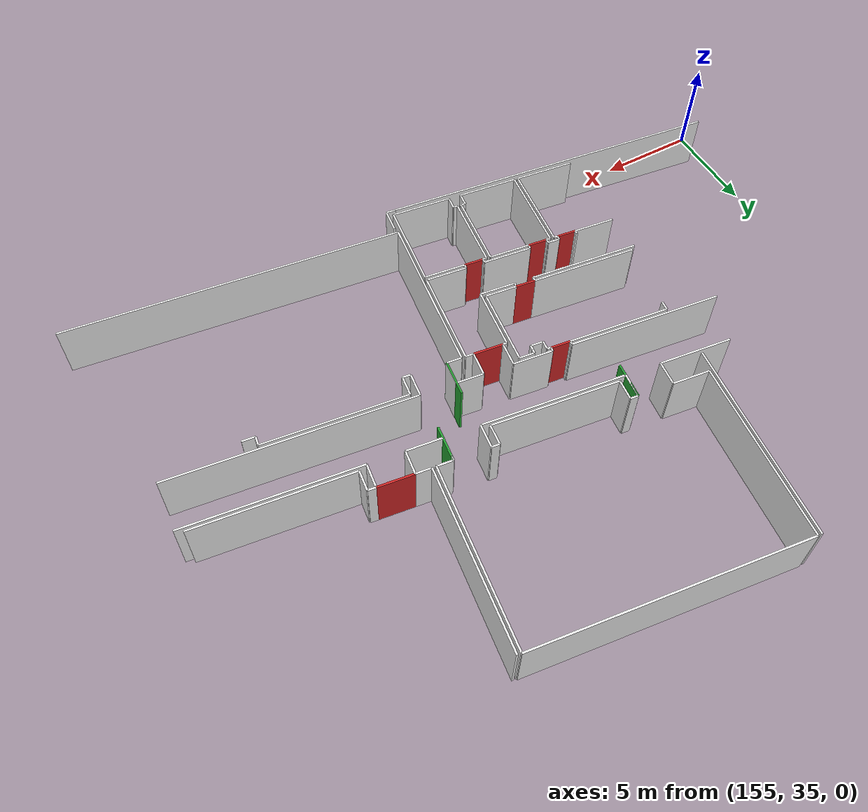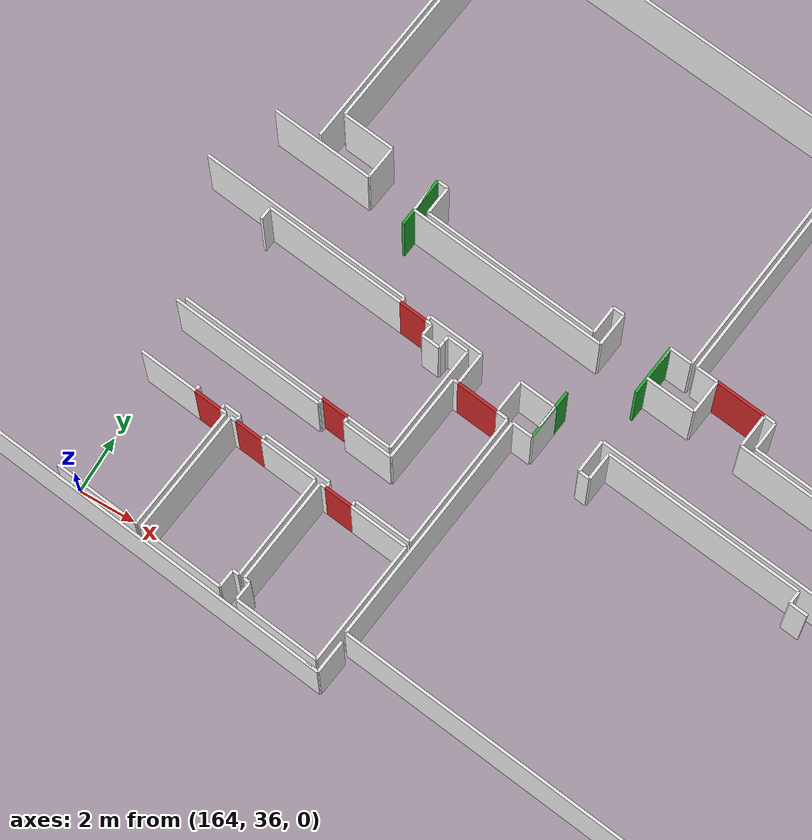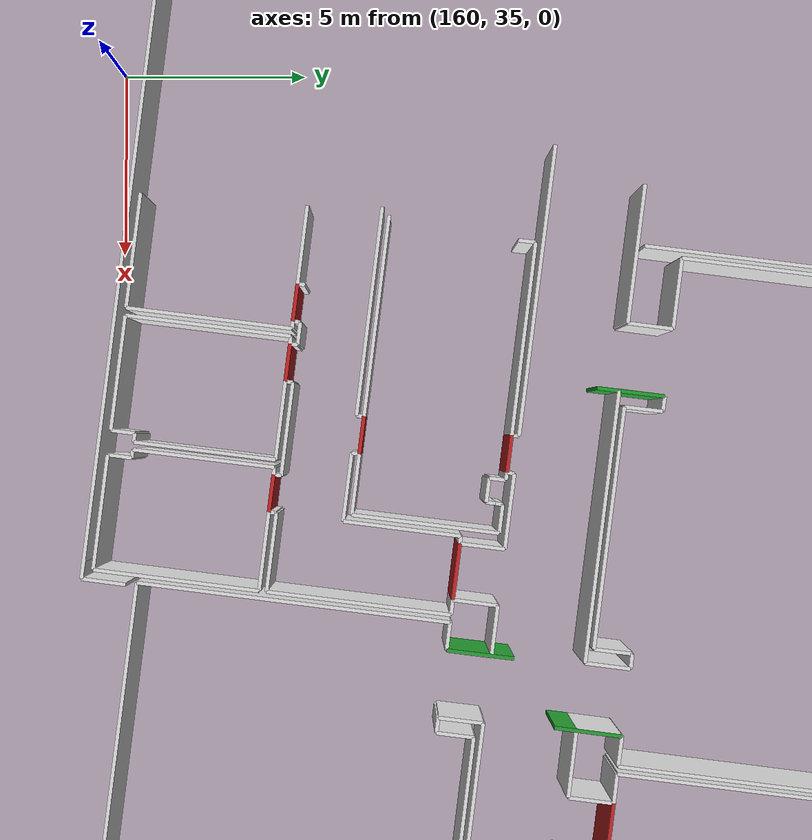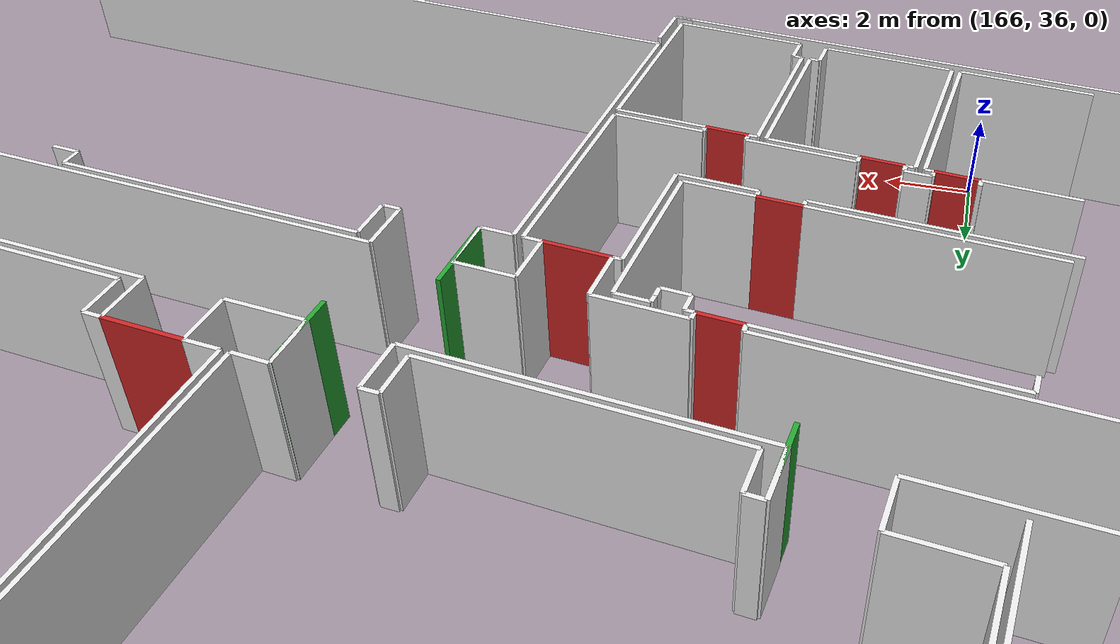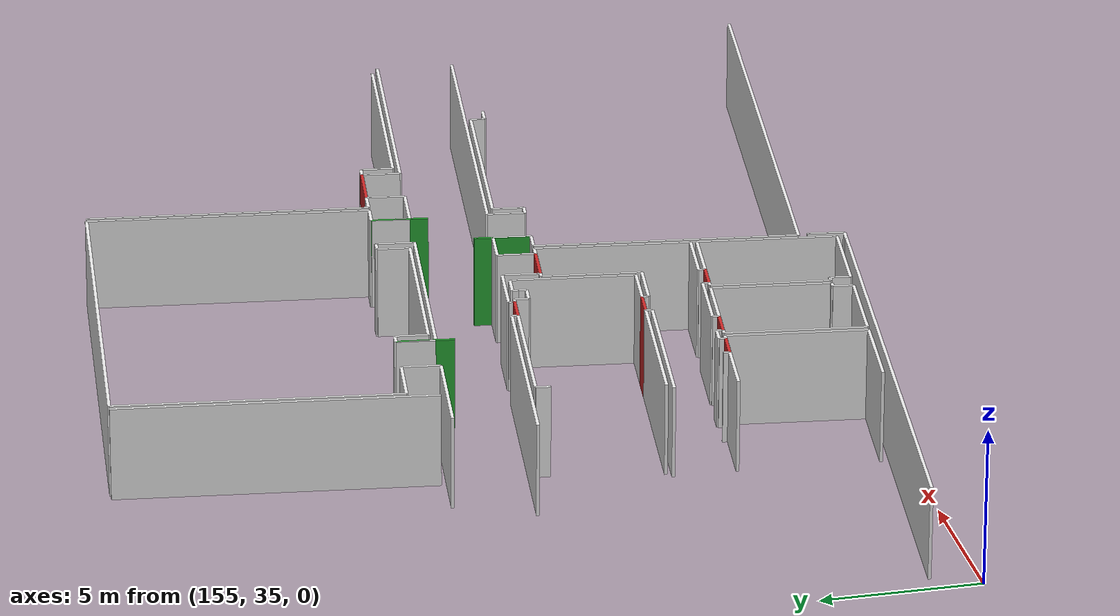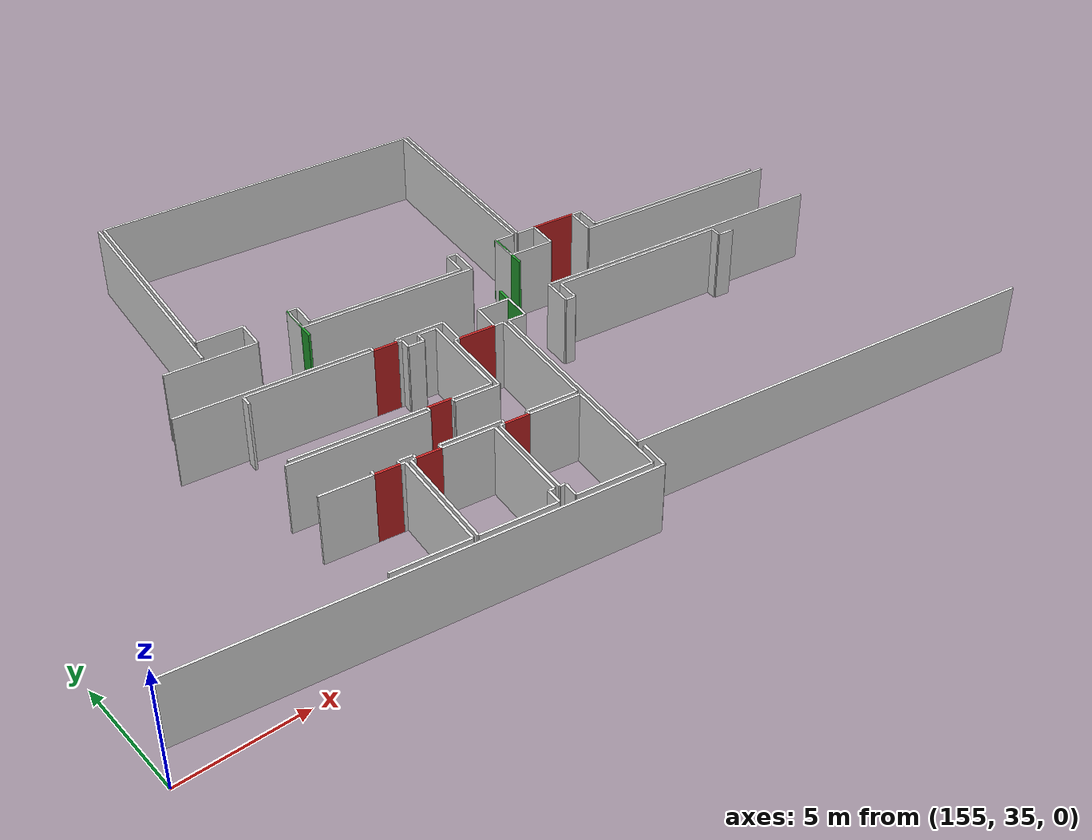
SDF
<sdf version="1.6">
 <world name="default">
  <model name="wall_166.5_39.9">
   <static>true</static>
   <pose>166.50500000000466 39.91000000014901 1.5 0 0 -0.1206236686924795</pose>
   <link name="link">
    <visual name="visual">
     <geometry><box><size>0.9972462083198822 0.1 3</size></box></geometry>
     <material>
      <script><uri>file://media/materials/scripts/gazebo.material</uri><name>Gazebo/Red</name></script>
     </material>
    </visual>
   </link>
  </model>
  <model name="wall_180.6_48.3">
   <static>true</static>
   <pose>180.6350000000093 48.31000000005588 1.5 0 0 3.0193009299888676</pose>
   <link name="link">
    <visual name="visual">
     <geometry><box><size>1.8034688796923075 0.1 3</size></box></geometry>
     <material>
      <script><uri>file://media/materials/scripts/gazebo.material</uri><name>Gazebo/Red</name></script>
     </material>
    </visual>
   </link>
  </model>
  <model name="wall_168.1_39.7">
   <static>true</static>
   <pose>168.09500000000116 39.71999999997206 1.5 0 0 -0.12062366822190172</pose>
   <link name="link">
    <visual name="visual">
     <geometry><box><size>0.9972462083216332 0.1 3</size></box></geometry>
     <material>
      <script><uri>file://media/materials/scripts/gazebo.material</uri><name>Gazebo/Red</name></script>
     </material>
    </visual>
   </link>
  </model>
  <model name="wall_170.5_45.6">
   <static>true</static>
   <pose>170.48499999998603 45.609999999869615 1.5 0 0 -0.1206236686924795</pose>
   <link name="link">
    <visual name="visual">
     <geometry><box><size>0.9972462083198822 0.1 3</size></box></geometry>
     <material>
      <script><uri>file://media/materials/scripts/gazebo.material</uri><name>Gazebo/Red</name></script>
     </material>
    </visual>
   </link>
  </model>
  <model name="wall_175.8_44.9">
   <static>true</static>
   <pose>175.80500000022585 44.86500000022352 1.5 0 0 1.4540117310915928</pose>
   <link name="link">
    <visual name="visual">
     <geometry><box><size>1.802276338498982 0.1 3</size></box></geometry>
     <material>
      <script><uri>file://media/materials/scripts/gazebo.material</uri><name>Gazebo/Green</name></script>
     </material>
    </visual>
   </link>
  </model>
  <model name="wall_177.8_47.7">
   <static>true</static>
   <pose>177.8499999999185 47.734999999869615 1.5 0 0 -1.6930880506520969</pose>
   <link name="link">
    <visual name="visual">
     <geometry><box><size>1.803468879749112 0.1 3</size></box></geometry>
     <material>
      <script><uri>file://media/materials/scripts/gazebo.material</uri><name>Gazebo/Green</name></script>
     </material>
    </visual>
   </link>
  </model>
  <model name="wall_168.8_48.8">
   <static>true</static>
   <pose>168.83500000002095 48.825000000186265 1.5 0 0 -1.6875809222415865</pose>
   <link name="link">
    <visual name="visual">
     <geometry><box><size>1.8022763384447233 0.1 3</size></box></geometry>
     <material>
      <script><uri>file://media/materials/scripts/gazebo.material</uri><name>Gazebo/Green</name></script>
     </material>
    </visual>
   </link>
  </model>
  <model name="wall_173.6_44.2">
   <static>true</static>
   <pose>173.6149999999907 44.21999999997206 1.5 0 0 -0.12022278677294355</pose>
   <link name="link">
    <visual name="visual">
     <geometry><box><size>1.5008331019912227 0.1 3</size></box></geometry>
     <material>
      <script><uri>file://media/materials/scripts/gazebo.material</uri><name>Gazebo/Red</name></script>
     </material>
    </visual>
   </link>
  </model>
  <model name="wall_170.0_41.7">
   <static>true</static>
   <pose>170.0100000000093 41.68999999994412 1.5 0 0 -0.11942892612851068</pose>
   <link name="link">
    <visual name="visual">
     <geometry><box><size>1.0071742649744493 0.1 3</size></box></geometry>
     <material>
      <script><uri>file://media/materials/scripts/gazebo.material</uri><name>Gazebo/Red</name></script>
     </material>
    </visual>
   </link>
  </model>
  <model name="wall_171.6_39.3">
   <static>true</static>
   <pose>171.56500000000233 39.300000000046566 1.5 0 0 -0.12062366822892527</pose>
   <link name="link">
    <visual name="visual">
     <geometry><box><size>0.9972462082638486 0.1 3</size></box></geometry>
     <material>
      <script><uri>file://media/materials/scripts/gazebo.material</uri><name>Gazebo/Red</name></script>
     </material>
    </visual>
   </link>
  </model>
  <model name="wall_166.9_37.6">
   <static>true</static>
   <pose>166.92499999998836 37.63000000012107 1.5 0 0 -1.690673321615393</pose>
   <link name="link">
    <visual name="visual">
     <geometry><box><size>4.4318055010582365 0.1 3</size></box></geometry>
     <material>
      <script><uri>file://media/materials/scripts/gazebo.material</uri><name>Gazebo/White</name></script>
     </material>
    </visual>
   </link>
  </model>
  <model name="wall_165.1_35.6">
   <static>true</static>
   <pose>165.1349999999802 35.61499999999069 1.5 0 0 3.0208710707011033</pose>
   <link name="link">
    <visual name="visual">
     <geometry><box><size>3.0723606558584717 0.1 3</size></box></geometry>
     <material>
      <script><uri>file://media/materials/scripts/gazebo.material</uri><name>Gazebo/White</name></script>
     </material>
    </visual>
   </link>
  </model>
  <model name="wall_165.0_40.1">
   <static>true</static>
   <pose>164.9649999999965 40.09500000020489 1.5 0 0 -0.11905156754423915</pose>
   <link name="link">
    <visual name="visual">
     <geometry><box><size>2.1048990474859015 0.1 3</size></box></geometry>
     <material>
      <script><uri>file://media/materials/scripts/gazebo.material</uri><name>Gazebo/White</name></script>
     </material>
    </visual>
   </link>
  </model>
  <model name="wall_167.1_39.8">
   <static>true</static>
   <pose>167.09500000000116 39.84000000008382 1.5 0 0 -0.10487693882591773</pose>
   <link name="link">
    <visual name="visual">
     <geometry><box><size>0.19104973174969345 0.1 3</size></box></geometry>
     <material>
      <script><uri>file://media/materials/scripts/gazebo.material</uri><name>Gazebo/White</name></script>
     </material>
    </visual>
   </link>
  </model>
  <model name="wall_185.7_46.7">
   <static>true</static>
   <pose>185.67999999999302 46.66500000003725 1.5 0 0 3.0220108925195217</pose>
   <link name="link">
    <visual name="visual">
     <geometry><box><size>7.79567187606697 0.1 3</size></box></geometry>
     <material>
      <script><uri>file://media/materials/scripts/gazebo.material</uri><name>Gazebo/White</name></script>
     </material>
    </visual>
   </link>
  </model>
  <model name="wall_181.9_47.6">
   <static>true</static>
   <pose>181.86999999999534 47.639999999897555 1.5 0 0 1.4536875822346544</pose>
   <link name="link">
    <visual name="visual">
     <geometry><box><size>1.0270345661353761 0.1 3</size></box></geometry>
     <material>
      <script><uri>file://media/materials/scripts/gazebo.material</uri><name>Gazebo/White</name></script>
     </material>
    </visual>
   </link>
  </model>
  <model name="wall_181.7_48.2">
   <static>true</static>
   <pose>181.73000000001048 48.175000000046566 1.5 0 0 3.01723765834454</pose>
   <link name="link">
    <visual name="visual">
     <geometry><box><size>0.4031128874149275 0.1 3</size></box></geometry>
     <material>
      <script><uri>file://media/materials/scripts/gazebo.material</uri><name>Gazebo/White</name></script>
     </material>
    </visual>
   </link>
  </model>
  <model name="wall_179.4_48.5">
   <static>true</static>
   <pose>179.35000000000582 48.46499999985099 1.5 0 0 3.026716048357006</pose>
   <link name="link">
    <visual name="visual">
     <geometry><box><size>0.7851751396509952 0.1 3</size></box></geometry>
     <material>
      <script><uri>file://media/materials/scripts/gazebo.material</uri><name>Gazebo/White</name></script>
     </material>
    </visual>
   </link>
  </model>
  <model name="wall_179.5_52.9">
   <static>true</static>
   <pose>179.49500000002445 52.949999999953434 1.5 0 0 1.4508789678012857</pose>
   <link name="link">
    <visual name="visual">
     <geometry><box><size>8.944232779076149 0.1 3</size></box></geometry>
     <material>
      <script><uri>file://media/materials/scripts/gazebo.material</uri><name>Gazebo/White</name></script>
     </material>
    </visual>
   </link>
  </model>
  <model name="wall_170.4_37.5">
   <static>true</static>
   <pose>170.44499999997788 37.53000000002794 1.5 0 0 -1.6899106225096845</pose>
   <link name="link">
    <visual name="visual">
     <geometry><box><size>3.7868324496644155 0.1 3</size></box></geometry>
     <material>
      <script><uri>file://media/materials/scripts/gazebo.material</uri><name>Gazebo/White</name></script>
     </material>
    </visual>
   </link>
  </model>
  <model name="wall_170.1_35.7">
   <static>true</static>
   <pose>170.10499999998137 35.66500000003725 1.5 0 0 3.0118901153086775</pose>
   <link name="link">
    <visual name="visual">
     <geometry><box><size>0.23194827011012187 0.1 3</size></box></geometry>
     <material>
      <script><uri>file://media/materials/scripts/gazebo.material</uri><name>Gazebo/White</name></script>
     </material>
    </visual>
   </link>
  </model>
  <model name="wall_169.9_35.4">
   <static>true</static>
   <pose>169.94999999998254 35.360000000102445 1.5 0 0 -1.695151321341658</pose>
   <link name="link">
    <visual name="visual">
     <geometry><box><size>0.6449806199952839 0.1 3</size></box></geometry>
     <material>
      <script><uri>file://media/materials/scripts/gazebo.material</uri><name>Gazebo/White</name></script>
     </material>
    </visual>
   </link>
  </model>
  <model name="wall_168.4_35.2">
   <static>true</static>
   <pose>168.3849999999802 35.22500000009313 1.5 0 0 3.020871070550642</pose>
   <link name="link">
    <visual name="visual">
     <geometry><box><size>3.0723606559145504 0.1 3</size></box></geometry>
     <material>
      <script><uri>file://media/materials/scripts/gazebo.material</uri><name>Gazebo/White</name></script>
     </material>
    </visual>
   </link>
  </model>
  <model name="wall_167.1_37.6">
   <static>true</static>
   <pose>167.125 37.60499999998137 1.5 0 0 1.4506488810357367</pose>
   <link name="link">
    <visual name="visual">
     <geometry><box><size>4.421877428998444 0.1 3</size></box></geometry>
     <material>
      <script><uri>file://media/materials/scripts/gazebo.material</uri><name>Gazebo/White</name></script>
     </material>
    </visual>
   </link>
  </model>
  <model name="wall_167.5_39.8">
   <static>true</static>
   <pose>167.49499999999534 39.78999999980442 1.5 0 0 -0.09495170644739931</pose>
   <link name="link">
    <visual name="visual">
     <geometry><box><size>0.21095023106197072 0.1 3</size></box></geometry>
     <material>
      <script><uri>file://media/materials/scripts/gazebo.material</uri><name>Gazebo/White</name></script>
     </material>
    </visual>
   </link>
  </model>
  <model name="wall_169.6_39.5">
   <static>true</static>
   <pose>169.63000000000466 39.53500000014901 1.5 0 0 -0.11961849947817037</pose>
   <link name="link">
    <visual name="visual">
     <geometry><box><size>2.094970166810415 0.1 3</size></box></geometry>
     <material>
      <script><uri>file://media/materials/scripts/gazebo.material</uri><name>Gazebo/White</name></script>
     </material>
    </visual>
   </link>
  </model>
  <model name="wall_183.7_44.2">
   <static>true</static>
   <pose>183.69000000000233 44.22000000020489 1.5 0 0 3.021708265311705</pose>
   <link name="link">
    <visual name="visual">
     <geometry><box><size>12.207620570765556 0.1 3</size></box></geometry>
     <material>
      <script><uri>file://media/materials/scripts/gazebo.material</uri><name>Gazebo/White</name></script>
     </material>
    </visual>
   </link>
  </model>
  <model name="wall_177.6_44.4">
   <static>true</static>
   <pose>177.55999999999767 44.35499999998137 1.5 0 0 -1.6879050713333807</pose>
   <link name="link">
    <visual name="visual">
     <geometry><box><size>1.1982069942122657 0.1 3</size></box></geometry>
     <material>
      <script><uri>file://media/materials/scripts/gazebo.material</uri><name>Gazebo/White</name></script>
     </material>
    </visual>
   </link>
  </model>
  <model name="wall_175.8_44.6">
   <static>true</static>
   <pose>175.77499999999418 44.56500000017695 1.5 0 0 1.4454072064764434</pose>
   <link name="link">
    <visual name="visual">
     <geometry><box><size>1.199416524755487 0.1 3</size></box></geometry>
     <material>
      <script><uri>file://media/materials/scripts/gazebo.material</uri><name>Gazebo/White</name></script>
     </material>
    </visual>
   </link>
  </model>
  <model name="wall_175.2_45.2">
   <static>true</static>
   <pose>175.17999999999302 45.23999999999069 1.5 0 0 3.0227523092521484</pose>
   <link name="link">
    <visual name="visual">
     <geometry><box><size>1.3495184325570784 0.1 3</size></box></geometry>
     <material>
      <script><uri>file://media/materials/scripts/gazebo.material</uri><name>Gazebo/White</name></script>
     </material>
    </visual>
   </link>
  </model>
  <model name="wall_174.4_44.7">
   <static>true</static>
   <pose>174.43499999999767 44.7249999998603 1.5 0 0 -1.696185447161499</pose>
   <link name="link">
    <visual name="visual">
     <geometry><box><size>1.1994165247627664 0.1 3</size></box></geometry>
     <material>
      <script><uri>file://media/materials/scripts/gazebo.material</uri><name>Gazebo/White</name></script>
     </material>
    </visual>
   </link>
  </model>
  <model name="wall_172.9_44.9">
   <static>true</static>
   <pose>172.94000000000233 44.90500000002794 1.5 0 0 1.4536875822110042</pose>
   <link name="link">
    <visual name="visual">
     <geometry><box><size>1.198206993749794 0.1 3</size></box></geometry>
     <material>
      <script><uri>file://media/materials/scripts/gazebo.material</uri><name>Gazebo/White</name></script>
     </material>
    </visual>
   </link>
  </model>
  <model name="wall_172.0_45.6">
   <static>true</static>
   <pose>172.0100000000093 45.62000000011176 1.5 0 0 3.0221637274612827</pose>
   <link name="link">
    <visual name="visual">
     <geometry><box><size>2.0143485299488986 0.1 3</size></box></geometry>
     <material>
      <script><uri>file://media/materials/scripts/gazebo.material</uri><name>Gazebo/White</name></script>
     </material>
    </visual>
   </link>
  </model>
  <model name="wall_171.0_45.6">
   <static>true</static>
   <pose>170.99499999999534 45.64500000001863 1.5 0 0 -1.7273982035881303</pose>
   <link name="link">
    <visual name="visual">
     <geometry><box><size>0.1923538410258384 0.1 3</size></box></geometry>
     <material>
      <script><uri>file://media/materials/scripts/gazebo.material</uri><name>Gazebo/White</name></script>
     </material>
    </visual>
   </link>
  </model>
  <model name="wall_170.0_45.8">
   <static>true</static>
   <pose>170.0 45.764999999897555 1.5 0 0 1.4659193879370842</pose>
   <link name="link">
    <visual name="visual">
     <geometry><box><size>0.19104973169180559 0.1 3</size></box></geometry>
     <material>
      <script><uri>file://media/materials/scripts/gazebo.material</uri><name>Gazebo/White</name></script>
     </material>
    </visual>
   </link>
  </model>
  <model name="wall_166.1_46.3">
   <static>true</static>
   <pose>166.14500000001863 46.324999999953434 1.5 0 0 3.0218576675715907</pose>
   <link name="link">
    <visual name="visual">
     <geometry><box><size>7.7857433813364185 0.1 3</size></box></geometry>
     <material>
      <script><uri>file://media/materials/scripts/gazebo.material</uri><name>Gazebo/White</name></script>
     </material>
    </visual>
   </link>
  </model>
  <model name="wall_165.2_48.9">
   <static>true</static>
   <pose>165.1600000000035 48.949999999953434 1.5 0 0 -0.11900029336803308</pose>
   <link name="link">
    <visual name="visual">
     <geometry><box><size>3.7062110031539515 0.1 3</size></box></geometry>
     <material>
      <script><uri>file://media/materials/scripts/gazebo.material</uri><name>Gazebo/White</name></script>
     </material>
    </visual>
   </link>
  </model>
  <model name="wall_167.1_49.3">
   <static>true</static>
   <pose>167.07500000001164 49.330000000074506 1.5 0 0 1.446441332248135</pose>
   <link name="link">
    <visual name="visual">
     <geometry><box><size>1.2093386624324964 0.1 3</size></box></geometry>
     <material>
      <script><uri>file://media/materials/scripts/gazebo.material</uri><name>Gazebo/White</name></script>
     </material>
    </visual>
   </link>
  </model>
  <model name="wall_168.9_49.1">
   <static>true</static>
   <pose>168.8649999999907 49.11499999999069 1.5 0 0 -1.6941340276703445</pose>
   <link name="link">
    <visual name="visual">
     <geometry><box><size>1.2192620723387293 0.1 3</size></box></geometry>
     <material>
      <script><uri>file://media/materials/scripts/gazebo.material</uri><name>Gazebo/White</name></script>
     </material>
    </visual>
   </link>
  </model>
  <model name="wall_172.4_48.1">
   <static>true</static>
   <pose>172.40499999999884 48.074999999953434 1.5 0 0 -0.11975615108864926</pose>
   <link name="link">
    <visual name="visual">
     <geometry><box><size>7.2821562740685915 0.1 3</size></box></geometry>
     <material>
      <script><uri>file://media/materials/scripts/gazebo.material</uri><name>Gazebo/White</name></script>
     </material>
    </visual>
   </link>
  </model>
  <model name="wall_176.1_48.2">
   <static>true</static>
   <pose>176.09500000000116 48.24500000011176 1.5 0 0 1.4474586259198403</pose>
   <link name="link">
    <visual name="visual">
     <geometry><box><size>1.2192620718694447 0.1 3</size></box></geometry>
     <material>
      <script><uri>file://media/materials/scripts/gazebo.material</uri><name>Gazebo/White</name></script>
     </material>
    </visual>
   </link>
  </model>
  <model name="wall_177.9_48.0">
   <static>true</static>
   <pose>177.8850000000093 48.02499999990687 1.5 0 0 -1.6941340277173305</pose>
   <link name="link">
    <visual name="visual">
     <geometry><box><size>1.2192620718766056 0.1 3</size></box></geometry>
     <material>
      <script><uri>file://media/materials/scripts/gazebo.material</uri><name>Gazebo/White</name></script>
     </material>
    </visual>
   </link>
  </model>
  <model name="wall_178.7_47.3">
   <static>true</static>
   <pose>178.70000000001164 47.31499999994412 1.5 0 0 -0.11743468977405322</pose>
   <link name="link">
    <visual name="visual">
     <geometry><box><size>1.7923448329168745 0.1 3</size></box></geometry>
     <material>
      <script><uri>file://media/materials/scripts/gazebo.material</uri><name>Gazebo/White</name></script>
     </material>
    </visual>
   </link>
  </model>
  <model name="wall_179.7_47.8">
   <static>true</static>
   <pose>179.66500000000815 47.81499999994412 1.5 0 0 1.4474586259198403</pose>
   <link name="link">
    <visual name="visual">
     <geometry><box><size>1.2192620718694447 0.1 3</size></box></geometry>
     <material>
      <script><uri>file://media/materials/scripts/gazebo.material</uri><name>Gazebo/White</name></script>
     </material>
    </visual>
   </link>
  </model>
  <model name="wall_181.5_47.6">
   <static>true</static>
   <pose>181.4550000000163 47.59500000020489 1.5 0 0 -1.6941340277173305</pose>
   <link name="link">
    <visual name="visual">
     <geometry><box><size>1.2192620718766056 0.1 3</size></box></geometry>
     <material>
      <script><uri>file://media/materials/scripts/gazebo.material</uri><name>Gazebo/White</name></script>
     </material>
    </visual>
   </link>
  </model>
  <model name="wall_185.7_46.5">
   <static>true</static>
   <pose>185.65499999999884 46.47500000009313 1.5 0 0 -0.11989009554178759</pose>
   <link name="link">
    <visual name="visual">
     <geometry><box><size>8.611817462088831 0.1 3</size></box></geometry>
     <material>
      <script><uri>file://media/materials/scripts/gazebo.material</uri><name>Gazebo/White</name></script>
     </material>
    </visual>
   </link>
  </model>
  <model name="wall_172.2_45.4">
   <static>true</static>
   <pose>172.21000000002095 45.39500000001863 1.5 0 0 -0.11787210300242888</pose>
   <link name="link">
    <visual name="visual">
     <geometry><box><size>0.7653103945376242 0.1 3</size></box></geometry>
     <material>
      <script><uri>file://media/materials/scripts/gazebo.material</uri><name>Gazebo/White</name></script>
     </material>
    </visual>
   </link>
  </model>
  <model name="wall_172.4_43.4">
   <static>true</static>
   <pose>172.35500000001048 43.39500000001863 1.5 0 0 -1.69042694704516</pose>
   <link name="link">
    <visual name="visual">
     <geometry><box><size>3.938146772429098 0.1 3</size></box></geometry>
     <material>
      <script><uri>file://media/materials/scripts/gazebo.material</uri><name>Gazebo/White</name></script>
     </material>
    </visual>
   </link>
  </model>
  <model name="wall_171.3_41.5">
   <static>true</static>
   <pose>171.31500000000233 41.53499999991618 1.5 0 0 3.024123548711388</pose>
   <link name="link">
    <visual name="visual">
     <geometry><box><size>1.6211724152395952 0.1 3</size></box></geometry>
     <material>
      <script><uri>file://media/materials/scripts/gazebo.material</uri><name>Gazebo/White</name></script>
     </material>
    </visual>
   </link>
  </model>
  <model name="wall_166.8_42.1">
   <static>true</static>
   <pose>166.8399999999965 42.07000000006519 1.5 0 0 3.0223114162191558</pose>
   <link name="link">
    <visual name="visual">
     <geometry><box><size>5.378215317411569 0.1 3</size></box></geometry>
     <material>
      <script><uri>file://media/materials/scripts/gazebo.material</uri><name>Gazebo/White</name></script>
     </material>
    </visual>
   </link>
  </model>
  <model name="wall_164.8_46.0">
   <static>true</static>
   <pose>164.84500000000116 46.049999999813735 1.5 0 0 1.4625257359507529</pose>
   <link name="link">
    <visual name="visual">
     <geometry><box><size>0.46270941201207827 0.1 3</size></box></geometry>
     <material>
      <script><uri>file://media/materials/scripts/gazebo.material</uri><name>Gazebo/White</name></script>
     </material>
    </visual>
   </link>
  </model>
  <model name="wall_167.4_46.0">
   <static>true</static>
   <pose>167.42999999999302 45.9749999998603 1.5 0 0 -0.11858166439217471</pose>
   <link name="link">
    <visual name="visual">
     <geometry><box><size>5.156209848308469 0.1 3</size></box></geometry>
     <material>
      <script><uri>file://media/materials/scripts/gazebo.material</uri><name>Gazebo/White</name></script>
     </material>
    </visual>
   </link>
  </model>
  <model name="wall_171.1_45.5">
   <static>true</static>
   <pose>171.0799999999872 45.53499999991618 1.5 0 0 -0.14888994659904642</pose>
   <link name="link">
    <visual name="visual">
     <geometry><box><size>0.20223748414268597 0.1 3</size></box></geometry>
     <material>
      <script><uri>file://media/materials/scripts/gazebo.material</uri><name>Gazebo/White</name></script>
     </material>
    </visual>
   </link>
  </model>
  <model name="wall_171.2_45.3">
   <static>true</static>
   <pose>171.15499999999884 45.300000000046566 1.5 0 0 -1.6839473083735081</pose>
   <link name="link">
    <visual name="visual">
     <geometry><box><size>0.4428317964528541 0.1 3</size></box></geometry>
     <material>
      <script><uri>file://media/materials/scripts/gazebo.material</uri><name>Gazebo/White</name></script>
     </material>
    </visual>
   </link>
  </model>
  <model name="wall_171.5_45.0">
   <static>true</static>
   <pose>171.45000000001164 45.04000000003725 1.5 0 0 -0.12435499465869924</pose>
   <link name="link">
    <visual name="visual">
     <geometry><box><size>0.6449806198869872 0.1 3</size></box></geometry>
     <material>
      <script><uri>file://media/materials/scripts/gazebo.material</uri><name>Gazebo/White</name></script>
     </material>
    </visual>
   </link>
  </model>
  <model name="wall_171.8_45.1">
   <static>true</static>
   <pose>171.7850000000035 45.125 1.5 0 0 1.4513674008959114</pose>
   <link name="link">
    <visual name="visual">
     <geometry><box><size>0.25179356623667715 0.1 3</size></box></geometry>
     <material>
      <script><uri>file://media/materials/scripts/gazebo.material</uri><name>Gazebo/White</name></script>
     </material>
    </visual>
   </link>
  </model>
  <model name="wall_171.8_45.3">
   <static>true</static>
   <pose>171.81500000000233 45.34499999997206 1.5 0 0 1.4141944496240997</pose>
   <link name="link">
    <visual name="visual">
     <geometry><box><size>0.19235384056587543 0.1 3</size></box></geometry>
     <material>
      <script><uri>file://media/materials/scripts/gazebo.material</uri><name>Gazebo/White</name></script>
     </material>
    </visual>
   </link>
  </model>
  <model name="wall_165.6_54.1">
   <static>true</static>
   <pose>165.55000000001746 54.11499999999069 1.5 0 0 -1.691540779261425</pose>
   <link name="link">
    <visual name="visual">
     <geometry><box><size>9.96253481813775 0.1 3</size></box></geometry>
     <material>
      <script><uri>file://media/materials/scripts/gazebo.material</uri><name>Gazebo/White</name></script>
     </material>
    </visual>
   </link>
  </model>
  <model name="wall_178.4_48.6">
   <static>true</static>
   <pose>178.36000000001513 48.579999999841675 1.5 0 0 3.0172376589266166</pose>
   <link name="link">
    <visual name="visual">
     <geometry><box><size>0.806225774829855 0.1 3</size></box></geometry>
     <material>
      <script><uri>file://media/materials/scripts/gazebo.material</uri><name>Gazebo/White</name></script>
     </material>
    </visual>
   </link>
  </model>
  <model name="wall_176.0_48.9">
   <static>true</static>
   <pose>175.97000000000116 48.87000000011176 1.5 0 0 3.0419240009977764</pose>
   <link name="link">
    <visual name="visual">
     <geometry><box><size>0.4019950248137912 0.1 3</size></box></geometry>
     <material>
      <script><uri>file://media/materials/scripts/gazebo.material</uri><name>Gazebo/White</name></script>
     </material>
    </visual>
   </link>
  </model>
  <model name="wall_175.7_48.4">
   <static>true</static>
   <pose>175.71000000002095 48.38000000012107 1.5 0 0 -1.687905071355139</pose>
   <link name="link">
    <visual name="visual">
     <geometry><box><size>1.0270345661353761 0.1 3</size></box></geometry>
     <material>
      <script><uri>file://media/materials/scripts/gazebo.material</uri><name>Gazebo/White</name></script>
     </material>
    </visual>
   </link>
  </model>
  <model name="wall_172.4_48.3">
   <static>true</static>
   <pose>172.43499999999767 48.26000000000931 1.5 0 0 3.0208760957199403</pose>
   <link name="link">
    <visual name="visual">
     <geometry><box><size>6.4771367131116735 0.1 3</size></box></geometry>
     <material>
      <script><uri>file://media/materials/scripts/gazebo.material</uri><name>Gazebo/White</name></script>
     </material>
    </visual>
   </link>
  </model>
  <model name="wall_169.3_49.2">
   <static>true</static>
   <pose>169.27999999999884 49.15999999991618 1.5 0 0 1.453687582178367</pose>
   <link name="link">
    <visual name="visual">
     <geometry><box><size>1.0270345661421774 0.1 3</size></box></geometry>
     <material>
      <script><uri>file://media/materials/scripts/gazebo.material</uri><name>Gazebo/White</name></script>
     </material>
    </visual>
   </link>
  </model>
  <model name="wall_169.1_49.7">
   <static>true</static>
   <pose>169.14000000001397 49.69500000006519 1.5 0 0 3.01723765836245</pose>
   <link name="link">
    <visual name="visual">
     <geometry><box><size>0.4031128874726857 0.1 3</size></box></geometry>
     <material>
      <script><uri>file://media/materials/scripts/gazebo.material</uri><name>Gazebo/White</name></script>
     </material>
    </visual>
   </link>
  </model>
  <model name="wall_166.2_50.0">
   <static>true</static>
   <pose>166.21000000002095 50.045000000158325 1.5 0 0 3.0198571684511863</pose>
   <link name="link">
    <visual name="visual">
     <geometry><box><size>1.894016895386348 0.1 3</size></box></geometry>
     <material>
      <script><uri>file://media/materials/scripts/gazebo.material</uri><name>Gazebo/White</name></script>
     </material>
    </visual>
   </link>
  </model>
  <model name="wall_165.8_54.6">
   <static>true</static>
   <pose>165.80999999999767 54.59499999997206 1.5 0 0 1.4496339921387622</pose>
   <link name="link">
    <visual name="visual">
     <geometry><box><size>8.935507819571937 0.1 3</size></box></geometry>
     <material>
      <script><uri>file://media/materials/scripts/gazebo.material</uri><name>Gazebo/White</name></script>
     </material>
    </visual>
   </link>
  </model>
  <model name="wall_173.1_58.2">
   <static>true</static>
   <pose>173.09500000000116 58.21999999997206 1.5 0 0 -0.11951661708533105</pose>
   <link name="link">
    <visual name="visual">
     <geometry><box><size>13.586923860836658 0.1 3</size></box></geometry>
     <material>
      <script><uri>file://media/materials/scripts/gazebo.material</uri><name>Gazebo/White</name></script>
     </material>
    </visual>
   </link>
  </model>
  <model name="wall_179.3_53.0">
   <static>true</static>
   <pose>179.30000000001746 52.96999999997206 1.5 0 0 -1.6918235466011338</pose>
   <link name="link">
    <visual name="visual">
     <geometry><box><size>8.945434590131466 0.1 3</size></box></geometry>
     <material>
      <script><uri>file://media/materials/scripts/gazebo.material</uri><name>Gazebo/White</name></script>
     </material>
    </visual>
   </link>
  </model>
  <model name="wall_185.4_43.4">
   <static>true</static>
   <pose>185.40499999999884 43.359999999869615 1.5 0 0 3.0191315960530236</pose>
   <link name="link">
    <visual name="visual">
     <geometry><box><size>0.6549045731757559 0.1 3</size></box></geometry>
     <material>
      <script><uri>file://media/materials/scripts/gazebo.material</uri><name>Gazebo/White</name></script>
     </material>
    </visual>
   </link>
  </model>
  <model name="wall_185.1_43.6">
   <static>true</static>
   <pose>185.11000000001513 43.625 1.5 0 0 1.4382447945575316</pose>
   <link name="link">
    <visual name="visual">
     <geometry><box><size>0.45398237869696956 0.1 3</size></box></geometry>
     <material>
      <script><uri>file://media/materials/scripts/gazebo.material</uri><name>Gazebo/White</name></script>
     </material>
    </visual>
   </link>
  </model>
  <model name="wall_181.6_44.3">
   <static>true</static>
   <pose>181.57500000001164 44.2750000001397 1.5 0 0 3.0229380636870755</pose>
   <link name="link">
    <visual name="visual">
     <geometry><box><size>7.180487448650316 0.1 3</size></box></geometry>
     <material>
      <script><uri>file://media/materials/scripts/gazebo.material</uri><name>Gazebo/White</name></script>
     </material>
    </visual>
   </link>
  </model>
  <model name="wall_178.0_44.2">
   <static>true</static>
   <pose>177.95000000001164 44.205000000074506 1.5 0 0 -1.6914199953433933</pose>
   <link name="link">
    <visual name="visual">
     <geometry><box><size>0.9972462085370126 0.1 3</size></box></geometry>
     <material>
      <script><uri>file://media/materials/scripts/gazebo.material</uri><name>Gazebo/White</name></script>
     </material>
    </visual>
   </link>
  </model>
  <model name="wall_177.7_43.7">
   <static>true</static>
   <pose>177.69000000000233 43.734999999869615 1.5 0 0 3.017237659508693</pose>
   <link name="link">
    <visual name="visual">
     <geometry><box><size>0.4031128874149275 0.1 3</size></box></geometry>
     <material>
      <script><uri>file://media/materials/scripts/gazebo.material</uri><name>Gazebo/White</name></script>
     </material>
    </visual>
   </link>
  </model>
  <model name="wall_175.3_44.0">
   <static>true</static>
   <pose>175.3300000000163 44.015000000130385 1.5 0 0 3.0205654339775116</pose>
   <link name="link">
    <visual name="visual">
     <geometry><box><size>0.7454528824542799 0.1 3</size></box></geometry>
     <material>
      <script><uri>file://media/materials/scripts/gazebo.material</uri><name>Gazebo/White</name></script>
     </material>
    </visual>
   </link>
  </model>
  <model name="wall_174.5_39.9">
   <static>true</static>
   <pose>174.4550000000163 39.90500000002794 1.5 0 0 -1.6917434222515764</pose>
   <link name="link">
    <visual name="visual">
     <geometry><box><size>8.371152847783126 0.1 3</size></box></geometry>
     <material>
      <script><uri>file://media/materials/scripts/gazebo.material</uri><name>Gazebo/White</name></script>
     </material>
    </visual>
   </link>
  </model>
  <model name="wall_182.5_34.7">
   <static>true</static>
   <pose>182.5450000000128 34.71500000008382 1.5 0 0 -0.11984180790102025</pose>
   <link name="link">
    <visual name="visual">
     <geometry><box><size>17.31418493603976 0.1 3</size></box></geometry>
     <material>
      <script><uri>file://media/materials/scripts/gazebo.material</uri><name>Gazebo/White</name></script>
     </material>
    </visual>
   </link>
  </model>
  <model name="wall_171.0_39.4">
   <static>true</static>
   <pose>170.97000000000116 39.36999999987893 1.5 0 0 -0.09966865257760905</pose>
   <link name="link">
    <visual name="visual">
     <geometry><box><size>0.20099751243585498 0.1 3</size></box></geometry>
     <material>
      <script><uri>file://media/materials/scripts/gazebo.material</uri><name>Gazebo/White</name></script>
     </material>
    </visual>
   </link>
  </model>
  <model name="wall_173.1_39.1">
   <static>true</static>
   <pose>173.10500000001048 39.11500000022352 1.5 0 0 -0.11905156754423915</pose>
   <link name="link">
    <visual name="visual">
     <geometry><box><size>2.1048990474859015 0.1 3</size></box></geometry>
     <material>
      <script><uri>file://media/materials/scripts/gazebo.material</uri><name>Gazebo/White</name></script>
     </material>
    </visual>
   </link>
  </model>
  <model name="wall_173.9_36.8">
   <static>true</static>
   <pose>173.88000000000466 36.79000000003725 1.5 0 0 -1.6929129367177644</pose>
   <link name="link">
    <visual name="visual">
     <geometry><box><size>4.43301252009494 0.1 3</size></box></geometry>
     <material>
      <script><uri>file://media/materials/scripts/gazebo.material</uri><name>Gazebo/White</name></script>
     </material>
    </visual>
   </link>
  </model>
  <model name="wall_172.1_34.8">
   <static>true</static>
   <pose>172.08499999999185 34.77499999990687 1.5 0 0 3.020871070550642</pose>
   <link name="link">
    <visual name="visual">
     <geometry><box><size>3.0723606559145504 0.1 3</size></box></geometry>
     <material>
      <script><uri>file://media/materials/scripts/gazebo.material</uri><name>Gazebo/White</name></script>
     </material>
    </visual>
   </link>
  </model>
  <model name="wall_170.6_35.3">
   <static>true</static>
   <pose>170.60000000000582 35.28000000002794 1.5 0 0 1.446441332248135</pose>
   <link name="link">
    <visual name="visual">
     <geometry><box><size>0.6449806199952839 0.1 3</size></box></geometry>
     <material>
      <script><uri>file://media/materials/scripts/gazebo.material</uri><name>Gazebo/White</name></script>
     </material>
    </visual>
   </link>
  </model>
  <model name="wall_170.5_35.6">
   <static>true</static>
   <pose>170.52999999999884 35.61499999999069 1.5 0 0 3.006064940537032</pose>
   <link name="link">
    <visual name="visual">
     <geometry><box><size>0.22203603311405212 0.1 3</size></box></geometry>
     <material>
      <script><uri>file://media/materials/scripts/gazebo.material</uri><name>Gazebo/White</name></script>
     </material>
    </visual>
   </link>
  </model>
  <model name="wall_170.6_37.5">
   <static>true</static>
   <pose>170.64499999998952 37.50499999988824 1.5 0 0 1.4513674007734978</pose>
   <link name="link">
    <visual name="visual">
     <geometry><box><size>3.7769034936056385 0.1 3</size></box></geometry>
     <material>
      <script><uri>file://media/materials/scripts/gazebo.material</uri><name>Gazebo/White</name></script>
     </material>
    </visual>
   </link>
  </model>
  <model name="wall_166.7_41.9">
   <static>true</static>
   <pose>166.72000000000116 41.87999999988824 1.5 0 0 -0.11857471213006499</pose>
   <link name="link">
    <visual name="visual">
     <geometry><box><size>5.579175566332764 0.1 3</size></box></geometry>
     <material>
      <script><uri>file://media/materials/scripts/gazebo.material</uri><name>Gazebo/White</name></script>
     </material>
    </visual>
   </link>
  </model>
  <model name="wall_169.5_41.6">
   <static>true</static>
   <pose>169.5 41.64999999990687 1.5 0 0 1.4711276743037347</pose>
   <link name="link">
    <visual name="visual">
     <geometry><box><size>0.20099751260961132 0.1 3</size></box></geometry>
     <material>
      <script><uri>file://media/materials/scripts/gazebo.material</uri><name>Gazebo/White</name></script>
     </material>
    </visual>
   </link>
  </model>
  <model name="wall_170.5_41.5">
   <static>true</static>
   <pose>170.49499999999534 41.53000000002794 1.5 0 0 -1.7196862747459547</pose>
   <link name="link">
    <visual name="visual">
     <geometry><box><size>0.2022374838894058 0.1 3</size></box></geometry>
     <material>
      <script><uri>file://media/materials/scripts/gazebo.material</uri><name>Gazebo/White</name></script>
     </material>
    </visual>
   </link>
  </model>
  <model name="wall_171.4_41.3">
   <static>true</static>
   <pose>171.3849999999802 41.32000000006519 1.5 0 0 -0.1209536472312257</pose>
   <link name="link">
    <visual name="visual">
     <geometry><box><size>1.823321145624578 0.1 3</size></box></geometry>
     <material>
      <script><uri>file://media/materials/scripts/gazebo.material</uri><name>Gazebo/White</name></script>
     </material>
    </visual>
   </link>
  </model>
  <model name="wall_172.5_42.8">
   <static>true</static>
   <pose>172.47999999998137 42.77000000001863 1.5 0 0 1.4495983856926966</pose>
   <link name="link">
    <visual name="visual">
     <geometry><box><size>3.1430558379864832 0.1 3</size></box></geometry>
     <material>
      <script><uri>file://media/materials/scripts/gazebo.material</uri><name>Gazebo/White</name></script>
     </material>
    </visual>
   </link>
  </model>
  <model name="wall_172.8_44.3">
   <static>true</static>
   <pose>172.76999999998952 44.32000000006519 1.5 0 0 -0.09966865257760905</pose>
   <link name="link">
    <visual name="visual">
     <geometry><box><size>0.20099751243585498 0.1 3</size></box></geometry>
     <material>
      <script><uri>file://media/materials/scripts/gazebo.material</uri><name>Gazebo/White</name></script>
     </material>
    </visual>
   </link>
  </model>
  <model name="wall_174.6_44.1">
   <static>true</static>
   <pose>174.55999999999767 44.10499999998137 1.5 0 0 -0.12435499408110015</pose>
   <link name="link">
    <visual name="visual">
     <geometry><box><size>0.4031128874149275 0.1 3</size></box></geometry>
     <material>
      <script><uri>file://media/materials/scripts/gazebo.material</uri><name>Gazebo/White</name></script>
     </material>
    </visual>
   </link>
  </model>
  <model name="wall_174.5_41.6">
   <static>true</static>
   <pose>174.4649999999965 41.63500000000931 1.5 0 0 -1.690870309974588</pose>
   <link name="link">
    <visual name="visual">
     <geometry><box><size>4.925464445238173 0.1 3</size></box></geometry>
     <material>
      <script><uri>file://media/materials/scripts/gazebo.material</uri><name>Gazebo/White</name></script>
     </material>
    </visual>
   </link>
  </model>
  <model name="wall_173.1_39.3">
   <static>true</static>
   <pose>173.125 39.31499999994412 1.5 0 0 3.0225410860422697</pose>
   <link name="link">
    <visual name="visual">
     <geometry><box><size>2.104899047428106 0.1 3</size></box></geometry>
     <material>
      <script><uri>file://media/materials/scripts/gazebo.material</uri><name>Gazebo/White</name></script>
     </material>
    </visual>
   </link>
  </model>
  <model name="wall_172.1_39.3">
   <static>true</static>
   <pose>172.07000000000698 39.34000000008382 1.5 0 0 -1.670464979516584</pose>
   <link name="link">
    <visual name="visual">
     <geometry><box><size>0.20099751214626105 0.1 3</size></box></geometry>
     <material>
      <script><uri>file://media/materials/scripts/gazebo.material</uri><name>Gazebo/White</name></script>
     </material>
    </visual>
   </link>
  </model>
  <model name="wall_171.1_39.5">
   <static>true</static>
   <pose>171.0800000000163 39.45999999996275 1.5 0 0 1.4711276743037347</pose>
   <link name="link">
    <visual name="visual">
     <geometry><box><size>0.20099751260961132 0.1 3</size></box></geometry>
     <material>
      <script><uri>file://media/materials/scripts/gazebo.material</uri><name>Gazebo/White</name></script>
     </material>
    </visual>
   </link>
  </model>
  <model name="wall_169.9_39.7">
   <static>true</static>
   <pose>169.85500000001048 39.70999999996275 1.5 0 0 3.0207271763608894</pose>
   <link name="link">
    <visual name="visual">
     <geometry><box><size>2.4881519246295563 0.1 3</size></box></geometry>
     <material>
      <script><uri>file://media/materials/scripts/gazebo.material</uri><name>Gazebo/White</name></script>
     </material>
    </visual>
   </link>
  </model>
  <model name="wall_168.6_39.8">
   <static>true</static>
   <pose>168.60500000001048 39.76000000000931 1.5 0 0 -1.7196862744613206</pose>
   <link name="link">
    <visual name="visual">
     <geometry><box><size>0.20223748388077126 0.1 3</size></box></geometry>
     <material>
      <script><uri>file://media/materials/scripts/gazebo.material</uri><name>Gazebo/White</name></script>
     </material>
    </visual>
   </link>
  </model>
  <model name="wall_167.6_39.9">
   <static>true</static>
   <pose>167.60999999998603 39.87999999988824 1.5 0 0 1.4711276743037347</pose>
   <link name="link">
    <visual name="visual">
     <geometry><box><size>0.20099751260961132 0.1 3</size></box></geometry>
     <material>
      <script><uri>file://media/materials/scripts/gazebo.material</uri><name>Gazebo/White</name></script>
     </material>
    </visual>
   </link>
  </model>
  <model name="wall_167.3_40.0">
   <static>true</static>
   <pose>167.32000000000698 40.014999999897555 1.5 0 0 3.0254510269809813</pose>
   <link name="link">
    <visual name="visual">
     <geometry><box><size>0.6040695323790061 0.1 3</size></box></geometry>
     <material>
      <script><uri>file://media/materials/scripts/gazebo.material</uri><name>Gazebo/White</name></script>
     </material>
    </visual>
   </link>
  </model>
  <model name="wall_167.0_39.9">
   <static>true</static>
   <pose>167.0100000000093 39.949999999953434 1.5 0 0 -1.670464979516584</pose>
   <link name="link">
    <visual name="visual">
     <geometry><box><size>0.20099751214626105 0.1 3</size></box></geometry>
     <material>
      <script><uri>file://media/materials/scripts/gazebo.material</uri><name>Gazebo/White</name></script>
     </material>
    </visual>
   </link>
  </model>
  <model name="wall_166.0_40.1">
   <static>true</static>
   <pose>166.02000000001863 40.07000000006519 1.5 0 0 1.471127674073209</pose>
   <link name="link">
    <visual name="visual">
     <geometry><box><size>0.20099751214626105 0.1 3</size></box></geometry>
     <material>
      <script><uri>file://media/materials/scripts/gazebo.material</uri><name>Gazebo/White</name></script>
     </material>
    </visual>
   </link>
  </model>
  <model name="wall_173.6_34.3">
   <static>true</static>
   <pose>173.6149999999907 34.31499999994412 1.5 0 0 -0.14784936588774888</pose>
   <link name="link">
    <visual name="visual">
     <geometry><box><size>0.4751841748369362 0.1 3</size></box></geometry>
     <material>
      <script><uri>file://media/materials/scripts/gazebo.material</uri><name>Gazebo/White</name></script>
     </material>
    </visual>
   </link>
  </model>
  <model name="wall_173.9_34.9">
   <static>true</static>
   <pose>173.92499999998836 34.86999999987893 1.5 0 0 1.4443558295348613</pose>
   <link name="link">
    <visual name="visual">
     <geometry><box><size>1.1894956916284358 0.1 3</size></box></geometry>
     <material>
      <script><uri>file://media/materials/scripts/gazebo.material</uri><name>Gazebo/White</name></script>
     </material>
    </visual>
   </link>
  </model>
  <model name="wall_164.8_35.4">
   <static>true</static>
   <pose>164.7599999999802 35.37999999988824 1.5 0 0 3.0211661134919177</pose>
   <link name="link">
    <visual name="visual">
     <geometry><box><size>18.312629521741698 0.1 3</size></box></geometry>
     <material>
      <script><uri>file://media/materials/scripts/gazebo.material</uri><name>Gazebo/White</name></script>
     </material>
    </visual>
   </link>
  </model>
 </world>
</sdf>
